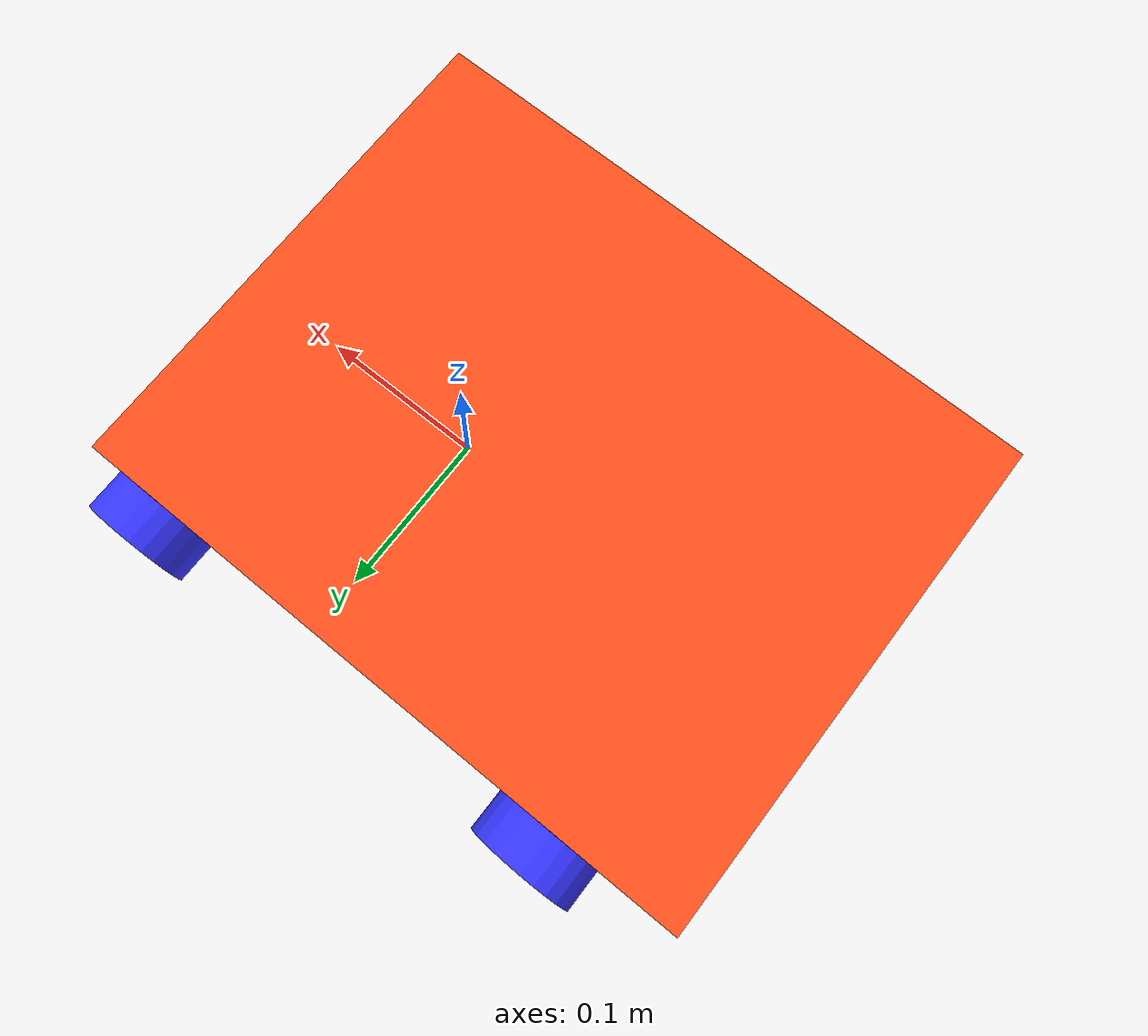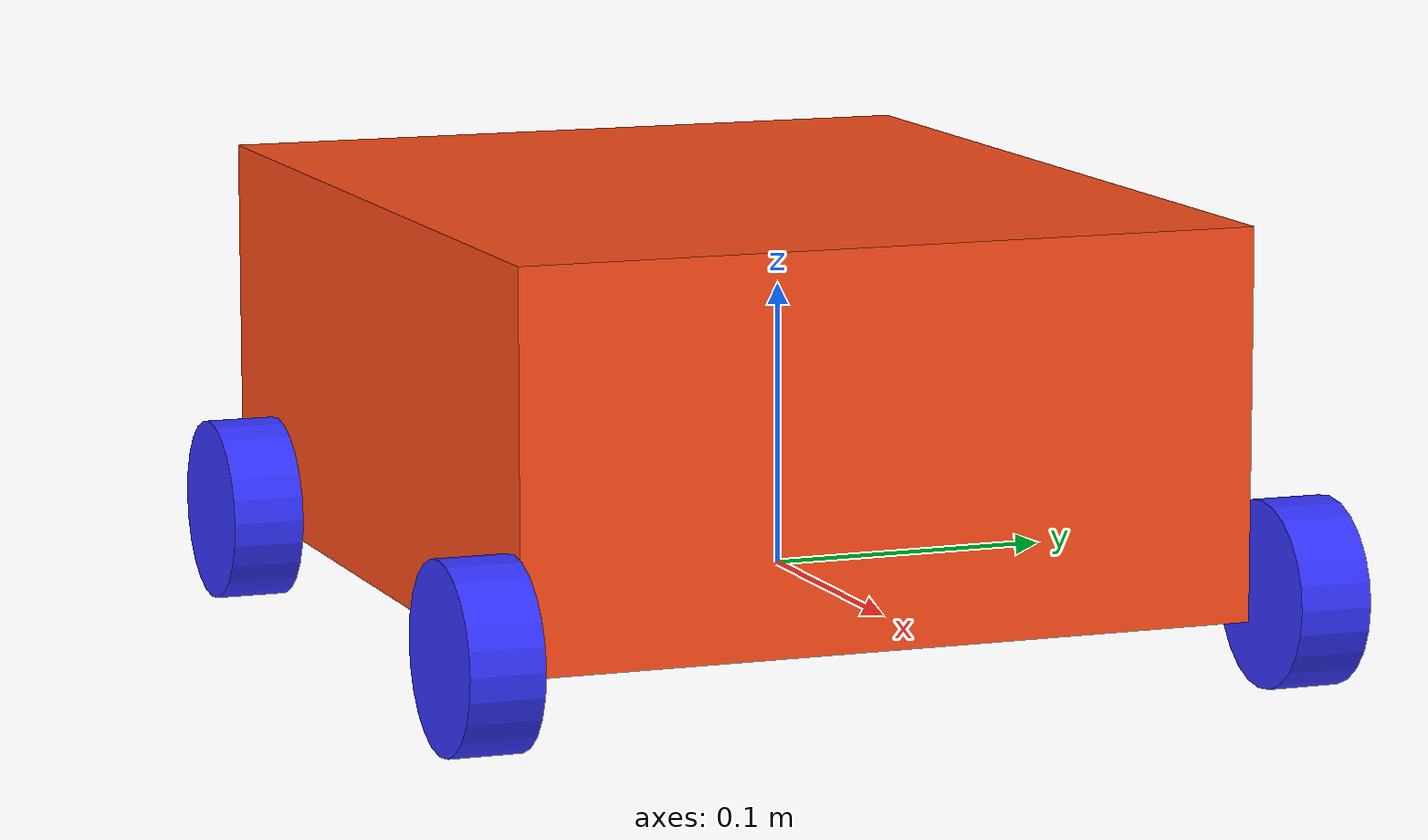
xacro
<?xml version="1.0"?>
<robot xmlns:xacro="http://www.ros.org/wiki/xacro" >

    <xacro:include filename="inertial_macros.xacro"/>
    <xacro:include filename="wheel.xacro"/>

    <xacro:property name="chassis_length" value="0.335"/>
    <xacro:property name="chassis_width" value="0.265"/>
    <xacro:property name="chassis_height" value="0.138"/>
    <xacro:property name="chassis_mass" value="1.0"/>
    <xacro:property name="wheel_radius" value="0.033"/>
    <xacro:property name="wheel_thickness" value="0.026"/>
    <xacro:property name="wheel_mass" value="0.05"/>
    <xacro:property name="wheel_offset_x" value="0.226"/>
    <xacro:property name="wheel_offset_y" value="0.1485"/>
    <xacro:property name="wheel_offset_z" value="0.01"/>
    <xacro:property name="caster_wheel_radius" value="0.01"/>
    <xacro:property name="caster_wheel_mass" value="0.01"/>
    <xacro:property name="caster_wheel_offset_x" value="0.075"/>
    <xacro:property name="caster_wheel_offset_z" value="${wheel_offset_z - wheel_radius + caster_wheel_radius}"/>

    <material name="white">
        <color rgba="1 1 1 1" />
    </material>

    <material name="orange">
        <color rgba="1 0.3 0.1 1"/>
    </material>

    <material name="blue">
        <color rgba="0.2 0.2 1 1"/>
    </material>

    <material name="black">
        <color rgba="0 0 0 1"/>
    </material>

    <material name="red">
        <color rgba="1 0 0 1"/>
    </material>

    <!-- BASE LINK -->

    <link name="base_link">

    </link>

    <!-- BASE_FOOTPRINT LINK -->

    <joint name="base_footprint_joint" type="fixed">
        <parent link="base_link"/>
        <child link="base_footprint"/>
        <origin xyz="0 0 0" rpy="0 0 0"/>
    </joint>

    <link name="base_footprint">
    </link>

    <!-- CHASSIS LINK -->

    <joint name="chassis_joint" type="fixed">
        <parent link="base_link"/>
        <child link="chassis"/>
        <origin xyz="${-wheel_offset_x} 0 ${-wheel_offset_z}"/>
    </joint>

    <link name="chassis">
        <visual>
            <origin xyz="${chassis_length/2} 0 ${chassis_height/2}"/>
            <geometry>
                <box size="${chassis_length} ${chassis_width} ${chassis_height}"/>
            </geometry>
            <material name="orange"/>
        </visual>
        <collision>
            <origin xyz="${chassis_length/2} 0 ${chassis_height/2}"/>
            <geometry>
                <box size="${chassis_length} ${chassis_width} ${chassis_height}"/>
            </geometry>
        </collision>
        <xacro:inertial_box mass="0.5" x="${chassis_length}" y="${chassis_width}" z="${chassis_height}">
            <origin xyz="${chassis_length/2} 0 ${chassis_height/2}" rpy="0 0 0"/>
        </xacro:inertial_box>
    </link>

    <gazebo reference="chassis">
        <material>Gazebo/Orange</material>
    </gazebo>

    <!-- LEFT WHEEL LINK -->
    <xacro:wheel parent_prefix="base_link" wheel_prefix="front_left" reflect="1">
        <origin xyz="${chassis_length/3} ${wheel_offset_y} 0" rpy="-${pi/2} 0 0" />
    </xacro:wheel>
    <gazebo reference="front_left_wheel">
        <material>Gazebo/Blue</material>
    </gazebo>

    <xacro:wheel parent_prefix="base_link" wheel_prefix="rear_left" reflect="1">
        <origin xyz="${-chassis_length/2} ${wheel_offset_y} 0" rpy="-${pi/2} 0 0" />
    </xacro:wheel>
    <gazebo reference="rear_left_wheel">
        <material>Gazebo/Green</material>
    </gazebo>

    <xacro:wheel parent_prefix="base_link" wheel_prefix="front_right" reflect="-1">
        <origin xyz="${chassis_length/3} ${-wheel_offset_y} 0" rpy="${pi/2} 0 0" />
    </xacro:wheel>
    <gazebo reference="front_right_wheel">
        <material>Gazebo/Blue</material>
    </gazebo>

    <xacro:wheel parent_prefix="base_link" wheel_prefix="rear_right" reflect="-1">
        <origin xyz="${-chassis_length/2} ${-wheel_offset_y} 0" rpy="${pi/2} 0 0" />
    </xacro:wheel>
    <gazebo reference="rear_right_wheel">
        <material>Gazebo/Green</material>
    </gazebo>
</robot>

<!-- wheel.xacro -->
<robot xmlns:xacro="http://www.ros.org/wiki/xacro" >
    <xacro:include filename="inertial_macros.xacro"/>
    <xacro:macro name="wheel" params="parent_prefix wheel_prefix reflect *joint_pose">
        <link name="${wheel_prefix}_wheel">
            <visual>
                <geometry>
                    <cylinder radius="${wheel_radius}" length="${wheel_thickness}"/>
                </geometry>
                <material name="blue"/>
            </visual>
            <collision>
                <geometry>
                    <sphere radius="${wheel_radius}"/>
                </geometry>
            </collision>
            <xacro:inertial_cylinder mass="${wheel_mass}" length="${wheel_thickness}" radius="${wheel_radius}">
                <origin xyz="0 0 0" rpy="0 0 0"/>
            </xacro:inertial_cylinder>
        </link>
        <joint name="${wheel_prefix}_wheel_joint" type="continuous">
            <parent link="${parent_prefix}"/>
            <child link="${wheel_prefix}_wheel"/>
            <xacro:insert_block name="joint_pose"/>
            <axis xyz="0 0 ${reflect*1}"/>
        </joint>
    </xacro:macro>
</robot>
